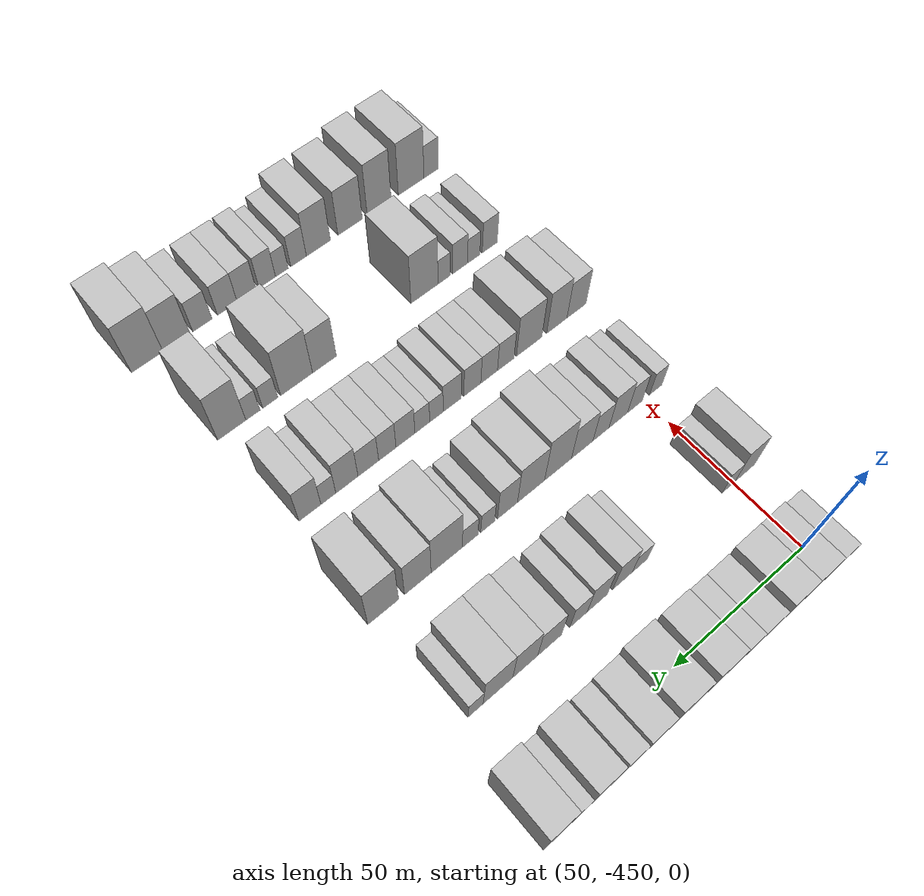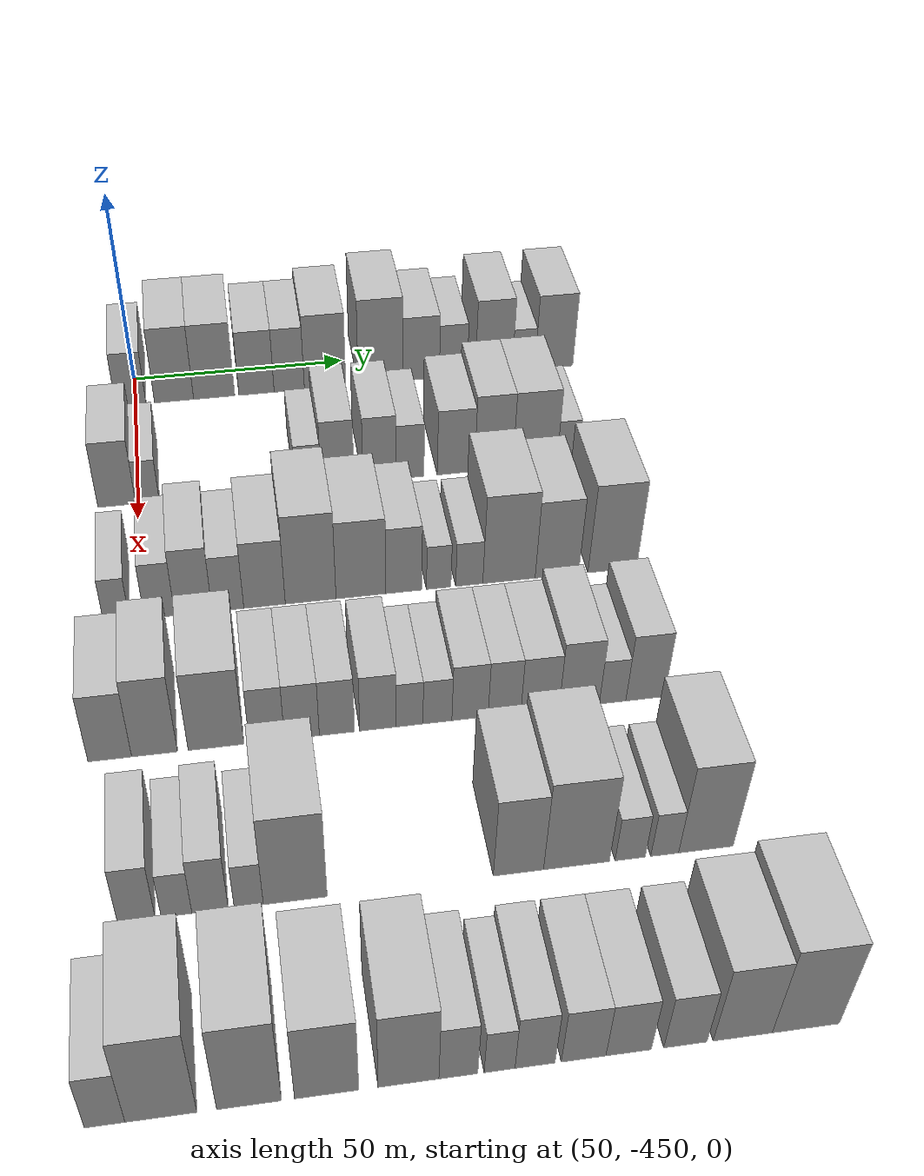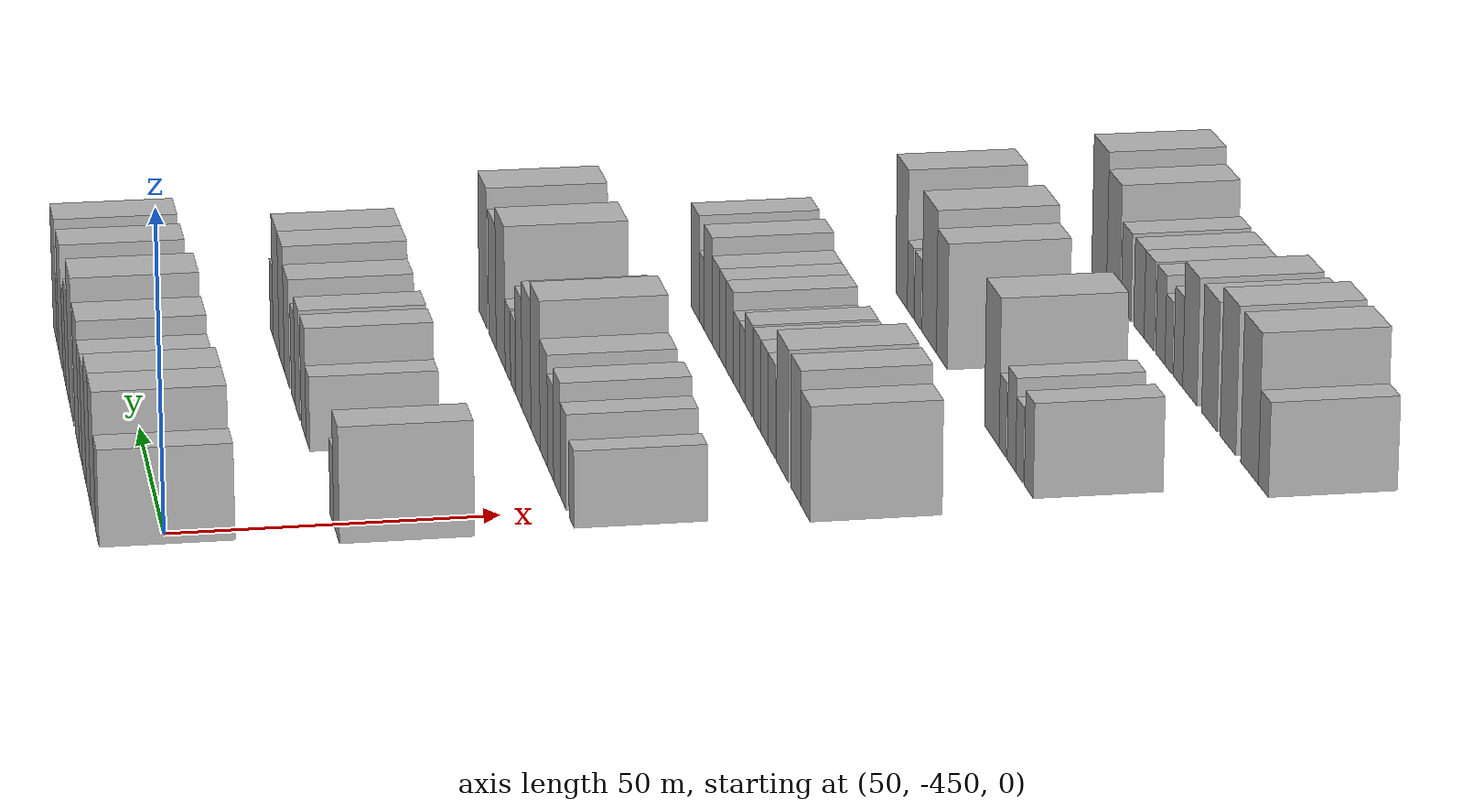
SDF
<sdf version="1.6">
 <world name="default">
  <model name="building_11">
   <static>1</static>
   <pose>50.0000 -451.0208 0 0.000000 0.000000 0.000000</pose>
   <link name="link">
    <pose>0 0 7.50 0 0 0</pose>
    <collision name="collision"><geometry><box><size>20.0000 7.1049 15.0000</size></box></geometry></collision>
    <visual name="visual">
     <cast_shadows>0</cast_shadows>
     <geometry><box><size>20.0000 7.1049 15.0000</size></box></geometry>
     <material>
      <script>
       <uri>model://HANNAS_wall/materials/scripts</uri>
       <uri>model://HANNAS_wall/materials/textures</uri>
       <name>vrc/HANNAS_wall</name>
      </script>
     </material>
    </visual>
   </link>
  </model>
  <model name="building_12">
   <static>1</static>
   <pose>50.0000 -440.8777 0 0.000000 0.000000 0.000000</pose>
   <link name="link">
    <pose>0 0 10.50 0 0 0</pose>
    <collision name="collision"><geometry><box><size>20.0000 9.1814 21.0000</size></box></geometry></collision>
    <visual name="visual">
     <cast_shadows>0</cast_shadows>
     <geometry><box><size>20.0000 9.1814 21.0000</size></box></geometry>
     <material>
      <script>
       <uri>model://HANNAS_wall/materials/scripts</uri>
       <uri>model://HANNAS_wall/materials/textures</uri>
       <name>vrc/HANNAS_wall</name>
      </script>
     </material>
    </visual>
   </link>
  </model>
  <model name="building_13">
   <static>1</static>
   <pose>50.0000 -431.4291 0 0.000000 0.000000 0.000000</pose>
   <link name="link">
    <pose>0 0 10.50 0 0 0</pose>
    <collision name="collision"><geometry><box><size>20.0000 9.7158 21.0000</size></box></geometry></collision>
    <visual name="visual">
     <cast_shadows>0</cast_shadows>
     <geometry><box><size>20.0000 9.7158 21.0000</size></box></geometry>
     <material>
      <script>
       <uri>model://HANNAS_wall/materials/scripts</uri>
       <uri>model://HANNAS_wall/materials/textures</uri>
       <name>vrc/HANNAS_wall</name>
      </script>
     </material>
    </visual>
   </link>
  </model>
  <model name="building_14">
   <static>1</static>
   <pose>50.0000 -421.3837 0 0.000000 0.000000 0.000000</pose>
   <link name="link">
    <pose>0 0 9.00 0 0 0</pose>
    <collision name="collision"><geometry><box><size>20.0000 8.3751 18.0000</size></box></geometry></collision>
    <visual name="visual">
     <cast_shadows>0</cast_shadows>
     <geometry><box><size>20.0000 8.3751 18.0000</size></box></geometry>
     <material>
      <script>
       <uri>model://HANNAS_wall/materials/scripts</uri>
       <uri>model://HANNAS_wall/materials/textures</uri>
       <name>vrc/HANNAS_wall</name>
      </script>
     </material>
    </visual>
   </link>
  </model>
  <model name="building_15">
   <static>1</static>
   <pose>50.0000 -413.5854 0 0.000000 0.000000 0.000000</pose>
   <link name="link">
    <pose>0 0 9.00 0 0 0</pose>
    <collision name="collision"><geometry><box><size>20.0000 7.2215 18.0000</size></box></geometry></collision>
    <visual name="visual">
     <cast_shadows>0</cast_shadows>
     <geometry><box><size>20.0000 7.2215 18.0000</size></box></geometry>
     <material>
      <script>
       <uri>model://HANNAS_wall/materials/scripts</uri>
       <uri>model://HANNAS_wall/materials/textures</uri>
       <name>vrc/HANNAS_wall</name>
      </script>
     </material>
    </visual>
   </link>
  </model>
  <model name="building_16">
   <static>1</static>
   <pose>50.0000 -405.0166 0 0.000000 0.000000 0.000000</pose>
   <link name="link">
    <pose>0 0 10.50 0 0 0</pose>
    <collision name="collision"><geometry><box><size>20.0000 9.9160 21.0000</size></box></geometry></collision>
    <visual name="visual">
     <cast_shadows>0</cast_shadows>
     <geometry><box><size>20.0000 9.9160 21.0000</size></box></geometry>
     <material>
      <script>
       <uri>model://HANNAS_wall/materials/scripts</uri>
       <uri>model://HANNAS_wall/materials/textures</uri>
       <name>vrc/HANNAS_wall</name>
      </script>
     </material>
    </visual>
   </link>
  </model>
  <model name="building_17">
   <static>1</static>
   <pose>50.0000 -391.6826 0 0.000000 0.000000 0.000000</pose>
   <link name="link">
    <pose>0 0 12.00 0 0 0</pose>
    <collision name="collision"><geometry><box><size>20.0000 10.7519 24.0000</size></box></geometry></collision>
    <visual name="visual">
     <cast_shadows>0</cast_shadows>
     <geometry><box><size>20.0000 10.7519 24.0000</size></box></geometry>
     <material>
      <script>
       <uri>model://HANNAS_wall/materials/scripts</uri>
       <uri>model://HANNAS_wall/materials/textures</uri>
       <name>vrc/HANNAS_wall</name>
      </script>
     </material>
    </visual>
   </link>
  </model>
  <model name="building_18">
   <static>1</static>
   <pose>50.0000 -381.8562 0 0.000000 0.000000 0.000000</pose>
   <link name="link">
    <pose>0 0 9.00 0 0 0</pose>
    <collision name="collision"><geometry><box><size>20.0000 8.9010 18.0000</size></box></geometry></collision>
    <visual name="visual">
     <cast_shadows>0</cast_shadows>
     <geometry><box><size>20.0000 8.9010 18.0000</size></box></geometry>
     <material>
      <script>
       <uri>model://HANNAS_wall/materials/scripts</uri>
       <uri>model://HANNAS_wall/materials/textures</uri>
       <name>vrc/HANNAS_wall</name>
      </script>
     </material>
    </visual>
   </link>
  </model>
  <model name="building_19">
   <static>1</static>
   <pose>50.0000 -374.0080 0 0.000000 0.000000 0.000000</pose>
   <link name="link">
    <pose>0 0 7.50 0 0 0</pose>
    <collision name="collision"><geometry><box><size>20.0000 6.7954 15.0000</size></box></geometry></collision>
    <visual name="visual">
     <cast_shadows>0</cast_shadows>
     <geometry><box><size>20.0000 6.7954 15.0000</size></box></geometry>
     <material>
      <script>
       <uri>model://HANNAS_wall/materials/scripts</uri>
       <uri>model://HANNAS_wall/materials/textures</uri>
       <name>vrc/HANNAS_wall</name>
      </script>
     </material>
    </visual>
   </link>
  </model>
  <model name="building_20">
   <static>1</static>
   <pose>50.0000 -364.0766 0 0.000000 0.000000 0.000000</pose>
   <link name="link">
    <pose>0 0 10.50 0 0 0</pose>
    <collision name="collision"><geometry><box><size>20.0000 9.0674 21.0000</size></box></geometry></collision>
    <visual name="visual">
     <cast_shadows>0</cast_shadows>
     <geometry><box><size>20.0000 9.0674 21.0000</size></box></geometry>
     <material>
      <script>
       <uri>model://HANNAS_wall/materials/scripts</uri>
       <uri>model://HANNAS_wall/materials/textures</uri>
       <name>vrc/HANNAS_wall</name>
      </script>
     </material>
    </visual>
   </link>
  </model>
  <model name="building_21">
   <static>1</static>
   <pose>50.0000 -356.7486 0 0.000000 0.000000 0.000000</pose>
   <link name="link">
    <pose>0 0 6.00 0 0 0</pose>
    <collision name="collision"><geometry><box><size>20.0000 5.5885 12.0000</size></box></geometry></collision>
    <visual name="visual">
     <cast_shadows>0</cast_shadows>
     <geometry><box><size>20.0000 5.5885 12.0000</size></box></geometry>
     <material>
      <script>
       <uri>model://HANNAS_wall/materials/scripts</uri>
       <uri>model://HANNAS_wall/materials/textures</uri>
       <name>vrc/HANNAS_wall</name>
      </script>
     </material>
    </visual>
   </link>
  </model>
  <model name="building_22">
   <static>1</static>
   <pose>50.0000 -349.2690 0 0.000000 0.000000 0.000000</pose>
   <link name="link">
    <pose>0 0 10.50 0 0 0</pose>
    <collision name="collision"><geometry><box><size>20.0000 9.3707 21.0000</size></box></geometry></collision>
    <visual name="visual">
     <cast_shadows>0</cast_shadows>
     <geometry><box><size>20.0000 9.3707 21.0000</size></box></geometry>
     <material>
      <script>
       <uri>model://HANNAS_wall/materials/scripts</uri>
       <uri>model://HANNAS_wall/materials/textures</uri>
       <name>vrc/HANNAS_wall</name>
      </script>
     </material>
    </visual>
   </link>
  </model>
  <model name="building_129">
   <static>1</static>
   <pose>85.0000 -454.5542 0 0.000000 0.000000 0.000000</pose>
   <link name="link">
    <pose>0 0 9.00 0 0 0</pose>
    <collision name="collision"><geometry><box><size>20.0000 8.1756 18.0000</size></box></geometry></collision>
    <visual name="visual">
     <cast_shadows>0</cast_shadows>
     <geometry><box><size>20.0000 8.1756 18.0000</size></box></geometry>
     <material>
      <script>
       <uri>model://HANNAS_wall/materials/scripts</uri>
       <uri>model://HANNAS_wall/materials/textures</uri>
       <name>vrc/HANNAS_wall</name>
      </script>
     </material>
    </visual>
   </link>
  </model>
  <model name="building_130">
   <static>1</static>
   <pose>85.0000 -447.8819 0 0.000000 0.000000 0.000000</pose>
   <link name="link">
    <pose>0 0 6.00 0 0 0</pose>
    <collision name="collision"><geometry><box><size>20.0000 5.1689 12.0000</size></box></geometry></collision>
    <visual name="visual">
     <cast_shadows>0</cast_shadows>
     <geometry><box><size>20.0000 5.1689 12.0000</size></box></geometry>
     <material>
      <script>
       <uri>model://HANNAS_wall/materials/scripts</uri>
       <uri>model://HANNAS_wall/materials/textures</uri>
       <name>vrc/HANNAS_wall</name>
      </script>
     </material>
    </visual>
   </link>
  </model>
  <model name="building_131">
   <static>1</static>
   <pose>85.0000 -412.5890 0 0.000000 0.000000 0.000000</pose>
   <link name="link">
    <pose>0 0 6.00 0 0 0</pose>
    <collision name="collision"><geometry><box><size>20.0000 5.8057 12.0000</size></box></geometry></collision>
    <visual name="visual">
     <cast_shadows>0</cast_shadows>
     <geometry><box><size>20.0000 5.8057 12.0000</size></box></geometry>
     <material>
      <script>
       <uri>model://HANNAS_wall/materials/scripts</uri>
       <uri>model://HANNAS_wall/materials/textures</uri>
       <name>vrc/HANNAS_wall</name>
      </script>
     </material>
    </visual>
   </link>
  </model>
  <model name="building_132">
   <static>1</static>
   <pose>85.0000 -406.0081 0 0.000000 0.000000 0.000000</pose>
   <link name="link">
    <pose>0 0 9.00 0 0 0</pose>
    <collision name="collision"><geometry><box><size>20.0000 7.3562 18.0000</size></box></geometry></collision>
    <visual name="visual">
     <cast_shadows>0</cast_shadows>
     <geometry><box><size>20.0000 7.3562 18.0000</size></box></geometry>
     <material>
      <script>
       <uri>model://HANNAS_wall/materials/scripts</uri>
       <uri>model://HANNAS_wall/materials/textures</uri>
       <name>vrc/HANNAS_wall</name>
      </script>
     </material>
    </visual>
   </link>
  </model>
  <model name="building_133">
   <static>1</static>
   <pose>85.0000 -396.6106 0 0.000000 0.000000 0.000000</pose>
   <link name="link">
    <pose>0 0 9.00 0 0 0</pose>
    <collision name="collision"><geometry><box><size>20.0000 7.4388 18.0000</size></box></geometry></collision>
    <visual name="visual">
     <cast_shadows>0</cast_shadows>
     <geometry><box><size>20.0000 7.4388 18.0000</size></box></geometry>
     <material>
      <script>
       <uri>model://HANNAS_wall/materials/scripts</uri>
       <uri>model://HANNAS_wall/materials/textures</uri>
       <name>vrc/HANNAS_wall</name>
      </script>
     </material>
    </visual>
   </link>
  </model>
  <model name="building_134">
   <static>1</static>
   <pose>85.0000 -389.7562 0 0.000000 0.000000 0.000000</pose>
   <link name="link">
    <pose>0 0 7.50 0 0 0</pose>
    <collision name="collision"><geometry><box><size>20.0000 6.2700 15.0000</size></box></geometry></collision>
    <visual name="visual">
     <cast_shadows>0</cast_shadows>
     <geometry><box><size>20.0000 6.2700 15.0000</size></box></geometry>
     <material>
      <script>
       <uri>model://HANNAS_wall/materials/scripts</uri>
       <uri>model://HANNAS_wall/materials/textures</uri>
       <name>vrc/HANNAS_wall</name>
      </script>
     </material>
    </visual>
   </link>
  </model>
  <model name="building_135">
   <static>1</static>
   <pose>85.0000 -379.3825 0 0.000000 0.000000 0.000000</pose>
   <link name="link">
    <pose>0 0 9.00 0 0 0</pose>
    <collision name="collision"><geometry><box><size>20.0000 8.4773 18.0000</size></box></geometry></collision>
    <visual name="visual">
     <cast_shadows>0</cast_shadows>
     <geometry><box><size>20.0000 8.4773 18.0000</size></box></geometry>
     <material>
      <script>
       <uri>model://HANNAS_wall/materials/scripts</uri>
       <uri>model://HANNAS_wall/materials/textures</uri>
       <name>vrc/HANNAS_wall</name>
      </script>
     </material>
    </visual>
   </link>
  </model>
  <model name="building_136">
   <static>1</static>
   <pose>85.0000 -370.7917 0 0.000000 0.000000 0.000000</pose>
   <link name="link">
    <pose>0 0 10.50 0 0 0</pose>
    <collision name="collision"><geometry><box><size>20.0000 8.7043 21.0000</size></box></geometry></collision>
    <visual name="visual">
     <cast_shadows>0</cast_shadows>
     <geometry><box><size>20.0000 8.7043 21.0000</size></box></geometry>
     <material>
      <script>
       <uri>model://HANNAS_wall/materials/scripts</uri>
       <uri>model://HANNAS_wall/materials/textures</uri>
       <name>vrc/HANNAS_wall</name>
      </script>
     </material>
    </visual>
   </link>
  </model>
  <model name="building_137">
   <static>1</static>
   <pose>85.0000 -361.3751 0 0.000000 0.000000 0.000000</pose>
   <link name="link">
    <pose>0 0 10.50 0 0 0</pose>
    <collision name="collision"><geometry><box><size>20.0000 10.1288 21.0000</size></box></geometry></collision>
    <visual name="visual">
     <cast_shadows>0</cast_shadows>
     <geometry><box><size>20.0000 10.1288 21.0000</size></box></geometry>
     <material>
      <script>
       <uri>model://HANNAS_wall/materials/scripts</uri>
       <uri>model://HANNAS_wall/materials/textures</uri>
       <name>vrc/HANNAS_wall</name>
      </script>
     </material>
    </visual>
   </link>
  </model>
  <model name="building_138">
   <static>1</static>
   <pose>85.0000 -353.8034 0 0.000000 0.000000 0.000000</pose>
   <link name="link">
    <pose>0 0 6.00 0 0 0</pose>
    <collision name="collision"><geometry><box><size>20.0000 5.0144 12.0000</size></box></geometry></collision>
    <visual name="visual">
     <cast_shadows>0</cast_shadows>
     <geometry><box><size>20.0000 5.0144 12.0000</size></box></geometry>
     <material>
      <script>
       <uri>model://HANNAS_wall/materials/scripts</uri>
       <uri>model://HANNAS_wall/materials/textures</uri>
       <name>vrc/HANNAS_wall</name>
      </script>
     </material>
    </visual>
   </link>
  </model>
  <model name="building_251">
   <static>1</static>
   <pose>120.0000 -454.8356 0 0.000000 0.000000 0.000000</pose>
   <link name="link">
    <pose>0 0 6.00 0 0 0</pose>
    <collision name="collision"><geometry><box><size>20.0000 5.1895 12.0000</size></box></geometry></collision>
    <visual name="visual">
     <cast_shadows>0</cast_shadows>
     <geometry><box><size>20.0000 5.1895 12.0000</size></box></geometry>
     <material>
      <script>
       <uri>model://HANNAS_wall/materials/scripts</uri>
       <uri>model://HANNAS_wall/materials/textures</uri>
       <name>vrc/HANNAS_wall</name>
      </script>
     </material>
    </visual>
   </link>
  </model>
  <model name="building_252">
   <static>1</static>
   <pose>120.0000 -446.1919 0 0.000000 0.000000 0.000000</pose>
   <link name="link">
    <pose>0 0 7.50 0 0 0</pose>
    <collision name="collision"><geometry><box><size>20.0000 6.0978 15.0000</size></box></geometry></collision>
    <visual name="visual">
     <cast_shadows>0</cast_shadows>
     <geometry><box><size>20.0000 6.0978 15.0000</size></box></geometry>
     <material>
      <script>
       <uri>model://HANNAS_wall/materials/scripts</uri>
       <uri>model://HANNAS_wall/materials/textures</uri>
       <name>vrc/HANNAS_wall</name>
      </script>
     </material>
    </visual>
   </link>
  </model>
  <model name="building_253">
   <static>1</static>
   <pose>120.0000 -439.3762 0 0.000000 0.000000 0.000000</pose>
   <link name="link">
    <pose>0 0 9.00 0 0 0</pose>
    <collision name="collision"><geometry><box><size>20.0000 7.5338 18.0000</size></box></geometry></collision>
    <visual name="visual">
     <cast_shadows>0</cast_shadows>
     <geometry><box><size>20.0000 7.5338 18.0000</size></box></geometry>
     <material>
      <script>
       <uri>model://HANNAS_wall/materials/scripts</uri>
       <uri>model://HANNAS_wall/materials/textures</uri>
       <name>vrc/HANNAS_wall</name>
      </script>
     </material>
    </visual>
   </link>
  </model>
  <model name="building_254">
   <static>1</static>
   <pose>120.0000 -432.3943 0 0.000000 0.000000 0.000000</pose>
   <link name="link">
    <pose>0 0 7.50 0 0 0</pose>
    <collision name="collision"><geometry><box><size>20.0000 6.4299 15.0000</size></box></geometry></collision>
    <visual name="visual">
     <cast_shadows>0</cast_shadows>
     <geometry><box><size>20.0000 6.4299 15.0000</size></box></geometry>
     <material>
      <script>
       <uri>model://HANNAS_wall/materials/scripts</uri>
       <uri>model://HANNAS_wall/materials/textures</uri>
       <name>vrc/HANNAS_wall</name>
      </script>
     </material>
    </visual>
   </link>
  </model>
  <model name="building_255">
   <static>1</static>
   <pose>120.0000 -424.9475 0 0.000000 0.000000 0.000000</pose>
   <link name="link">
    <pose>0 0 9.00 0 0 0</pose>
    <collision name="collision"><geometry><box><size>20.0000 8.4638 18.0000</size></box></geometry></collision>
    <visual name="visual">
     <cast_shadows>0</cast_shadows>
     <geometry><box><size>20.0000 8.4638 18.0000</size></box></geometry>
     <material>
      <script>
       <uri>model://HANNAS_wall/materials/scripts</uri>
       <uri>model://HANNAS_wall/materials/textures</uri>
       <name>vrc/HANNAS_wall</name>
      </script>
     </material>
    </visual>
   </link>
  </model>
  <model name="building_256">
   <static>1</static>
   <pose>120.0000 -415.5092 0 0.000000 0.000000 0.000000</pose>
   <link name="link">
    <pose>0 0 12.00 0 0 0</pose>
    <collision name="collision"><geometry><box><size>20.0000 10.4128 24.0000</size></box></geometry></collision>
    <visual name="visual">
     <cast_shadows>0</cast_shadows>
     <geometry><box><size>20.0000 10.4128 24.0000</size></box></geometry>
     <material>
      <script>
       <uri>model://HANNAS_wall/materials/scripts</uri>
       <uri>model://HANNAS_wall/materials/textures</uri>
       <name>vrc/HANNAS_wall</name>
      </script>
     </material>
    </visual>
   </link>
  </model>
  <model name="building_257">
   <static>1</static>
   <pose>120.0000 -405.1610 0 0.000000 0.000000 0.000000</pose>
   <link name="link">
    <pose>0 0 10.50 0 0 0</pose>
    <collision name="collision"><geometry><box><size>20.0000 10.2837 21.0000</size></box></geometry></collision>
    <visual name="visual">
     <cast_shadows>0</cast_shadows>
     <geometry><box><size>20.0000 10.2837 21.0000</size></box></geometry>
     <material>
      <script>
       <uri>model://HANNAS_wall/materials/scripts</uri>
       <uri>model://HANNAS_wall/materials/textures</uri>
       <name>vrc/HANNAS_wall</name>
      </script>
     </material>
    </visual>
   </link>
  </model>
  <model name="building_258">
   <static>1</static>
   <pose>120.0000 -396.2894 0 0.000000 0.000000 0.000000</pose>
   <link name="link">
    <pose>0 0 9.00 0 0 0</pose>
    <collision name="collision"><geometry><box><size>20.0000 7.4596 18.0000</size></box></geometry></collision>
    <visual name="visual">
     <cast_shadows>0</cast_shadows>
     <geometry><box><size>20.0000 7.4596 18.0000</size></box></geometry>
     <material>
      <script>
       <uri>model://HANNAS_wall/materials/scripts</uri>
       <uri>model://HANNAS_wall/materials/textures</uri>
       <name>vrc/HANNAS_wall</name>
      </script>
     </material>
    </visual>
   </link>
  </model>
  <model name="building_259">
   <static>1</static>
   <pose>120.0000 -389.0026 0 0.000000 0.000000 0.000000</pose>
   <link name="link">
    <pose>0 0 6.00 0 0 0</pose>
    <collision name="collision"><geometry><box><size>20.0000 5.1139 12.0000</size></box></geometry></collision>
    <visual name="visual">
     <cast_shadows>0</cast_shadows>
     <geometry><box><size>20.0000 5.1139 12.0000</size></box></geometry>
     <material>
      <script>
       <uri>model://HANNAS_wall/materials/scripts</uri>
       <uri>model://HANNAS_wall/materials/textures</uri>
       <name>vrc/HANNAS_wall</name>
      </script>
     </material>
    </visual>
   </link>
  </model>
  <model name="building_260">
   <static>1</static>
   <pose>120.0000 -382.6071 0 0.000000 0.000000 0.000000</pose>
   <link name="link">
    <pose>0 0 6.00 0 0 0</pose>
    <collision name="collision"><geometry><box><size>20.0000 5.6772 12.0000</size></box></geometry></collision>
    <visual name="visual">
     <cast_shadows>0</cast_shadows>
     <geometry><box><size>20.0000 5.6772 12.0000</size></box></geometry>
     <material>
      <script>
       <uri>model://HANNAS_wall/materials/scripts</uri>
       <uri>model://HANNAS_wall/materials/textures</uri>
       <name>vrc/HANNAS_wall</name>
      </script>
     </material>
    </visual>
   </link>
  </model>
  <model name="building_261">
   <static>1</static>
   <pose>120.0000 -374.2355 0 0.000000 0.000000 0.000000</pose>
   <link name="link">
    <pose>0 0 12.00 0 0 0</pose>
    <collision name="collision"><geometry><box><size>20.0000 11.0661 24.0000</size></box></geometry></collision>
    <visual name="visual">
     <cast_shadows>0</cast_shadows>
     <geometry><box><size>20.0000 11.0661 24.0000</size></box></geometry>
     <material>
      <script>
       <uri>model://HANNAS_wall/materials/scripts</uri>
       <uri>model://HANNAS_wall/materials/textures</uri>
       <name>vrc/HANNAS_wall</name>
      </script>
     </material>
    </visual>
   </link>
  </model>
  <model name="building_262">
   <static>1</static>
   <pose>120.0000 -364.0863 0 0.000000 0.000000 0.000000</pose>
   <link name="link">
    <pose>0 0 10.50 0 0 0</pose>
    <collision name="collision"><geometry><box><size>20.0000 9.2322 21.0000</size></box></geometry></collision>
    <visual name="visual">
     <cast_shadows>0</cast_shadows>
     <geometry><box><size>20.0000 9.2322 21.0000</size></box></geometry>
     <material>
      <script>
       <uri>model://HANNAS_wall/materials/scripts</uri>
       <uri>model://HANNAS_wall/materials/textures</uri>
       <name>vrc/HANNAS_wall</name>
      </script>
     </material>
    </visual>
   </link>
  </model>
  <model name="building_263">
   <static>1</static>
   <pose>120.0000 -352.2567 0 0.000000 0.000000 0.000000</pose>
   <link name="link">
    <pose>0 0 12.00 0 0 0</pose>
    <collision name="collision"><geometry><box><size>20.0000 10.4270 24.0000</size></box></geometry></collision>
    <visual name="visual">
     <cast_shadows>0</cast_shadows>
     <geometry><box><size>20.0000 10.4270 24.0000</size></box></geometry>
     <material>
      <script>
       <uri>model://HANNAS_wall/materials/scripts</uri>
       <uri>model://HANNAS_wall/materials/textures</uri>
       <name>vrc/HANNAS_wall</name>
      </script>
     </material>
    </visual>
   </link>
  </model>
  <model name="building_372">
   <static>1</static>
   <pose>155.0000 -456.3380 0 0.000000 0.000000 0.000000</pose>
   <link name="link">
    <pose>0 0 9.00 0 0 0</pose>
    <collision name="collision"><geometry><box><size>20.0000 8.0043 18.0000</size></box></geometry></collision>
    <visual name="visual">
     <cast_shadows>0</cast_shadows>
     <geometry><box><size>20.0000 8.0043 18.0000</size></box></geometry>
     <material>
      <script>
       <uri>model://HANNAS_wall/materials/scripts</uri>
       <uri>model://HANNAS_wall/materials/textures</uri>
       <name>vrc/HANNAS_wall</name>
      </script>
     </material>
    </visual>
   </link>
  </model>
  <model name="building_373">
   <static>1</static>
   <pose>155.0000 -448.1203 0 0.000000 0.000000 0.000000</pose>
   <link name="link">
    <pose>0 0 10.50 0 0 0</pose>
    <collision name="collision"><geometry><box><size>20.0000 8.4311 21.0000</size></box></geometry></collision>
    <visual name="visual">
     <cast_shadows>0</cast_shadows>
     <geometry><box><size>20.0000 8.4311 21.0000</size></box></geometry>
     <material>
      <script>
       <uri>model://HANNAS_wall/materials/scripts</uri>
       <uri>model://HANNAS_wall/materials/textures</uri>
       <name>vrc/HANNAS_wall</name>
      </script>
     </material>
    </visual>
   </link>
  </model>
  <model name="building_374">
   <static>1</static>
   <pose>155.0000 -436.7246 0 0.000000 0.000000 0.000000</pose>
   <link name="link">
    <pose>0 0 10.50 0 0 0</pose>
    <collision name="collision"><geometry><box><size>20.0000 10.3604 21.0000</size></box></geometry></collision>
    <visual name="visual">
     <cast_shadows>0</cast_shadows>
     <geometry><box><size>20.0000 10.3604 21.0000</size></box></geometry>
     <material>
      <script>
       <uri>model://HANNAS_wall/materials/scripts</uri>
       <uri>model://HANNAS_wall/materials/textures</uri>
       <name>vrc/HANNAS_wall</name>
      </script>
     </material>
    </visual>
   </link>
  </model>
  <model name="building_375">
   <static>1</static>
   <pose>155.0000 -427.2517 0 0.000000 0.000000 0.000000</pose>
   <link name="link">
    <pose>0 0 7.50 0 0 0</pose>
    <collision name="collision"><geometry><box><size>20.0000 6.5854 15.0000</size></box></geometry></collision>
    <visual name="visual">
     <cast_shadows>0</cast_shadows>
     <geometry><box><size>20.0000 6.5854 15.0000</size></box></geometry>
     <material>
      <script>
       <uri>model://HANNAS_wall/materials/scripts</uri>
       <uri>model://HANNAS_wall/materials/textures</uri>
       <name>vrc/HANNAS_wall</name>
      </script>
     </material>
    </visual>
   </link>
  </model>
  <model name="building_376">
   <static>1</static>
   <pose>155.0000 -420.6816 0 0.000000 0.000000 0.000000</pose>
   <link name="link">
    <pose>0 0 7.50 0 0 0</pose>
    <collision name="collision"><geometry><box><size>20.0000 6.5547 15.0000</size></box></geometry></collision>
    <visual name="visual">
     <cast_shadows>0</cast_shadows>
     <geometry><box><size>20.0000 6.5547 15.0000</size></box></geometry>
     <material>
      <script>
       <uri>model://HANNAS_wall/materials/scripts</uri>
       <uri>model://HANNAS_wall/materials/textures</uri>
       <name>vrc/HANNAS_wall</name>
      </script>
     </material>
    </visual>
   </link>
  </model>
  <model name="building_377">
   <static>1</static>
   <pose>155.0000 -414.0834 0 0.000000 0.000000 0.000000</pose>
   <link name="link">
    <pose>0 0 7.50 0 0 0</pose>
    <collision name="collision"><geometry><box><size>20.0000 6.6418 15.0000</size></box></geometry></collision>
    <visual name="visual">
     <cast_shadows>0</cast_shadows>
     <geometry><box><size>20.0000 6.6418 15.0000</size></box></geometry>
     <material>
      <script>
       <uri>model://HANNAS_wall/materials/scripts</uri>
       <uri>model://HANNAS_wall/materials/textures</uri>
       <name>vrc/HANNAS_wall</name>
      </script>
     </material>
    </visual>
   </link>
  </model>
  <model name="building_378">
   <static>1</static>
   <pose>155.0000 -406.3012 0 0.000000 0.000000 0.000000</pose>
   <link name="link">
    <pose>0 0 7.50 0 0 0</pose>
    <collision name="collision"><geometry><box><size>20.0000 6.9226 15.0000</size></box></geometry></collision>
    <visual name="visual">
     <cast_shadows>0</cast_shadows>
     <geometry><box><size>20.0000 6.9226 15.0000</size></box></geometry>
     <material>
      <script>
       <uri>model://HANNAS_wall/materials/scripts</uri>
       <uri>model://HANNAS_wall/materials/textures</uri>
       <name>vrc/HANNAS_wall</name>
      </script>
     </material>
    </visual>
   </link>
  </model>
  <model name="building_379">
   <static>1</static>
   <pose>155.0000 -400.2929 0 0.000000 0.000000 0.000000</pose>
   <link name="link">
    <pose>0 0 6.00 0 0 0</pose>
    <collision name="collision"><geometry><box><size>20.0000 5.0939 12.0000</size></box></geometry></collision>
    <visual name="visual">
     <cast_shadows>0</cast_shadows>
     <geometry><box><size>20.0000 5.0939 12.0000</size></box></geometry>
     <material>
      <script>
       <uri>model://HANNAS_wall/materials/scripts</uri>
       <uri>model://HANNAS_wall/materials/textures</uri>
       <name>vrc/HANNAS_wall</name>
      </script>
     </material>
    </visual>
   </link>
  </model>
  <model name="building_380">
   <static>1</static>
   <pose>155.0000 -394.9723 0 0.000000 0.000000 0.000000</pose>
   <link name="link">
    <pose>0 0 6.00 0 0 0</pose>
    <collision name="collision"><geometry><box><size>20.0000 5.5474 12.0000</size></box></geometry></collision>
    <visual name="visual">
     <cast_shadows>0</cast_shadows>
     <geometry><box><size>20.0000 5.5474 12.0000</size></box></geometry>
     <material>
      <script>
       <uri>model://HANNAS_wall/materials/scripts</uri>
       <uri>model://HANNAS_wall/materials/textures</uri>
       <name>vrc/HANNAS_wall</name>
      </script>
     </material>
    </visual>
   </link>
  </model>
  <model name="building_381">
   <static>1</static>
   <pose>155.0000 -388.7179 0 0.000000 0.000000 0.000000</pose>
   <link name="link">
    <pose>0 0 7.50 0 0 0</pose>
    <collision name="collision"><geometry><box><size>20.0000 6.9613 15.0000</size></box></geometry></collision>
    <visual name="visual">
     <cast_shadows>0</cast_shadows>
     <geometry><box><size>20.0000 6.9613 15.0000</size></box></geometry>
     <material>
      <script>
       <uri>model://HANNAS_wall/materials/scripts</uri>
       <uri>model://HANNAS_wall/materials/textures</uri>
       <name>vrc/HANNAS_wall</name>
      </script>
     </material>
    </visual>
   </link>
  </model>
  <model name="building_382">
   <static>1</static>
   <pose>155.0000 -382.0667 0 0.000000 0.000000 0.000000</pose>
   <link name="link">
    <pose>0 0 7.50 0 0 0</pose>
    <collision name="collision"><geometry><box><size>20.0000 6.3412 15.0000</size></box></geometry></collision>
    <visual name="visual">
     <cast_shadows>0</cast_shadows>
     <geometry><box><size>20.0000 6.3412 15.0000</size></box></geometry>
     <material>
      <script>
       <uri>model://HANNAS_wall/materials/scripts</uri>
       <uri>model://HANNAS_wall/materials/textures</uri>
       <name>vrc/HANNAS_wall</name>
      </script>
     </material>
    </visual>
   </link>
  </model>
  <model name="building_383">
   <static>1</static>
   <pose>155.0000 -375.1766 0 0.000000 0.000000 0.000000</pose>
   <link name="link">
    <pose>0 0 7.50 0 0 0</pose>
    <collision name="collision"><geometry><box><size>20.0000 7.4389 15.0000</size></box></geometry></collision>
    <visual name="visual">
     <cast_shadows>0</cast_shadows>
     <geometry><box><size>20.0000 7.4389 15.0000</size></box></geometry>
     <material>
      <script>
       <uri>model://HANNAS_wall/materials/scripts</uri>
       <uri>model://HANNAS_wall/materials/textures</uri>
       <name>vrc/HANNAS_wall</name>
      </script>
     </material>
    </visual>
   </link>
  </model>
  <model name="building_384">
   <static>1</static>
   <pose>155.0000 -367.5301 0 0.000000 0.000000 0.000000</pose>
   <link name="link">
    <pose>0 0 9.00 0 0 0</pose>
    <collision name="collision"><geometry><box><size>20.0000 7.8541 18.0000</size></box></geometry></collision>
    <visual name="visual">
     <cast_shadows>0</cast_shadows>
     <geometry><box><size>20.0000 7.8541 18.0000</size></box></geometry>
     <material>
      <script>
       <uri>model://HANNAS_wall/materials/scripts</uri>
       <uri>model://HANNAS_wall/materials/textures</uri>
       <name>vrc/HANNAS_wall</name>
      </script>
     </material>
    </visual>
   </link>
  </model>
  <model name="building_385">
   <static>1</static>
   <pose>155.0000 -360.9988 0 0.000000 0.000000 0.000000</pose>
   <link name="link">
    <pose>0 0 6.00 0 0 0</pose>
    <collision name="collision"><geometry><box><size>20.0000 5.2086 12.0000</size></box></geometry></collision>
    <visual name="visual">
     <cast_shadows>0</cast_shadows>
     <geometry><box><size>20.0000 5.2086 12.0000</size></box></geometry>
     <material>
      <script>
       <uri>model://HANNAS_wall/materials/scripts</uri>
       <uri>model://HANNAS_wall/materials/textures</uri>
       <name>vrc/HANNAS_wall</name>
      </script>
     </material>
    </visual>
   </link>
  </model>
  <model name="building_386">
   <static>1</static>
   <pose>155.0000 -354.5808 0 0.000000 0.000000 0.000000</pose>
   <link name="link">
    <pose>0 0 9.00 0 0 0</pose>
    <collision name="collision"><geometry><box><size>20.0000 7.6274 18.0000</size></box></geometry></collision>
    <visual name="visual">
     <cast_shadows>0</cast_shadows>
     <geometry><box><size>20.0000 7.6274 18.0000</size></box></geometry>
     <material>
      <script>
       <uri>model://HANNAS_wall/materials/scripts</uri>
       <uri>model://HANNAS_wall/materials/textures</uri>
       <name>vrc/HANNAS_wall</name>
      </script>
     </material>
    </visual>
   </link>
  </model>
  <model name="building_497">
   <static>1</static>
   <pose>190.0000 -452.0537 0 0.000000 0.000000 0.000000</pose>
   <link name="link">
    <pose>0 0 7.50 0 0 0</pose>
    <collision name="collision"><geometry><box><size>20.0000 6.3151 15.0000</size></box></geometry></collision>
    <visual name="visual">
     <cast_shadows>0</cast_shadows>
     <geometry><box><size>20.0000 6.3151 15.0000</size></box></geometry>
     <material>
      <script>
       <uri>model://HANNAS_wall/materials/scripts</uri>
       <uri>model://HANNAS_wall/materials/textures</uri>
       <name>vrc/HANNAS_wall</name>
      </script>
     </material>
    </visual>
   </link>
  </model>
  <model name="building_498">
   <static>1</static>
   <pose>190.0000 -445.3091 0 0.000000 0.000000 0.000000</pose>
   <link name="link">
    <pose>0 0 6.00 0 0 0</pose>
    <collision name="collision"><geometry><box><size>20.0000 5.1743 12.0000</size></box></geometry></collision>
    <visual name="visual">
     <cast_shadows>0</cast_shadows>
     <geometry><box><size>20.0000 5.1743 12.0000</size></box></geometry>
     <material>
      <script>
       <uri>model://HANNAS_wall/materials/scripts</uri>
       <uri>model://HANNAS_wall/materials/textures</uri>
       <name>vrc/HANNAS_wall</name>
      </script>
     </material>
    </visual>
   </link>
  </model>
  <model name="building_499">
   <static>1</static>
   <pose>190.0000 -439.6464 0 0.000000 0.000000 0.000000</pose>
   <link name="link">
    <pose>0 0 7.50 0 0 0</pose>
    <collision name="collision"><geometry><box><size>20.0000 6.1510 15.0000</size></box></geometry></collision>
    <visual name="visual">
     <cast_shadows>0</cast_shadows>
     <geometry><box><size>20.0000 6.1510 15.0000</size></box></geometry>
     <material>
      <script>
       <uri>model://HANNAS_wall/materials/scripts</uri>
       <uri>model://HANNAS_wall/materials/textures</uri>
       <name>vrc/HANNAS_wall</name>
      </script>
     </material>
    </visual>
   </link>
  </model>
  <model name="building_500">
   <static>1</static>
   <pose>190.0000 -433.1033 0 0.000000 0.000000 0.000000</pose>
   <link name="link">
    <pose>0 0 6.00 0 0 0</pose>
    <collision name="collision"><geometry><box><size>20.0000 4.9353 12.0000</size></box></geometry></collision>
    <visual name="visual">
     <cast_shadows>0</cast_shadows>
     <geometry><box><size>20.0000 4.9353 12.0000</size></box></geometry>
     <material>
      <script>
       <uri>model://HANNAS_wall/materials/scripts</uri>
       <uri>model://HANNAS_wall/materials/textures</uri>
       <name>vrc/HANNAS_wall</name>
      </script>
     </material>
    </visual>
   </link>
  </model>
  <model name="building_501">
   <static>1</static>
   <pose>190.0000 -425.1860 0 0.000000 0.000000 0.000000</pose>
   <link name="link">
    <pose>0 0 12.00 0 0 0</pose>
    <collision name="collision"><geometry><box><size>20.0000 10.8992 24.0000</size></box></geometry></collision>
    <visual name="visual">
     <cast_shadows>0</cast_shadows>
     <geometry><box><size>20.0000 10.8992 24.0000</size></box></geometry>
     <material>
      <script>
       <uri>model://HANNAS_wall/materials/scripts</uri>
       <uri>model://HANNAS_wall/materials/textures</uri>
       <name>vrc/HANNAS_wall</name>
      </script>
     </material>
    </visual>
   </link>
  </model>
  <model name="building_502">
   <static>1</static>
   <pose>190.0000 -386.4638 0 0.000000 0.000000 0.000000</pose>
   <link name="link">
    <pose>0 0 10.50 0 0 0</pose>
    <collision name="collision"><geometry><box><size>20.0000 8.8484 21.0000</size></box></geometry></collision>
    <visual name="visual">
     <cast_shadows>0</cast_shadows>
     <geometry><box><size>20.0000 8.8484 21.0000</size></box></geometry>
     <material>
      <script>
       <uri>model://HANNAS_wall/materials/scripts</uri>
       <uri>model://HANNAS_wall/materials/textures</uri>
       <name>vrc/HANNAS_wall</name>
      </script>
     </material>
    </visual>
   </link>
  </model>
  <model name="building_503">
   <static>1</static>
   <pose>190.0000 -376.1815 0 0.000000 0.000000 0.000000</pose>
   <link name="link">
    <pose>0 0 12.00 0 0 0</pose>
    <collision name="collision"><geometry><box><size>20.0000 11.7163 24.0000</size></box></geometry></collision>
    <visual name="visual">
     <cast_shadows>0</cast_shadows>
     <geometry><box><size>20.0000 11.7163 24.0000</size></box></geometry>
     <material>
      <script>
       <uri>model://HANNAS_wall/materials/scripts</uri>
       <uri>model://HANNAS_wall/materials/textures</uri>
       <name>vrc/HANNAS_wall</name>
      </script>
     </material>
    </visual>
   </link>
  </model>
  <model name="building_504">
   <static>1</static>
   <pose>190.0000 -366.6189 0 0.000000 0.000000 0.000000</pose>
   <link name="link">
    <pose>0 0 6.00 0 0 0</pose>
    <collision name="collision"><geometry><box><size>20.0000 5.4088 12.0000</size></box></geometry></collision>
    <visual name="visual">
     <cast_shadows>0</cast_shadows>
     <geometry><box><size>20.0000 5.4088 12.0000</size></box></geometry>
     <material>
      <script>
       <uri>model://HANNAS_wall/materials/scripts</uri>
       <uri>model://HANNAS_wall/materials/textures</uri>
       <name>vrc/HANNAS_wall</name>
      </script>
     </material>
    </visual>
   </link>
  </model>
  <model name="building_505">
   <static>1</static>
   <pose>190.0000 -360.4108 0 0.000000 0.000000 0.000000</pose>
   <link name="link">
    <pose>0 0 6.00 0 0 0</pose>
    <collision name="collision"><geometry><box><size>20.0000 5.0073 12.0000</size></box></geometry></collision>
    <visual name="visual">
     <cast_shadows>0</cast_shadows>
     <geometry><box><size>20.0000 5.0073 12.0000</size></box></geometry>
     <material>
      <script>
       <uri>model://HANNAS_wall/materials/scripts</uri>
       <uri>model://HANNAS_wall/materials/textures</uri>
       <name>vrc/HANNAS_wall</name>
      </script>
     </material>
    </visual>
   </link>
  </model>
  <model name="building_506">
   <static>1</static>
   <pose>190.0000 -352.9693 0 0.000000 0.000000 0.000000</pose>
   <link name="link">
    <pose>0 0 12.00 0 0 0</pose>
    <collision name="collision"><geometry><box><size>20.0000 9.8757 24.0000</size></box></geometry></collision>
    <visual name="visual">
     <cast_shadows>0</cast_shadows>
     <geometry><box><size>20.0000 9.8757 24.0000</size></box></geometry>
     <material>
      <script>
       <uri>model://HANNAS_wall/materials/scripts</uri>
       <uri>model://HANNAS_wall/materials/textures</uri>
       <name>vrc/HANNAS_wall</name>
      </script>
     </material>
    </visual>
   </link>
  </model>
  <model name="building_626">
   <static>1</static>
   <pose>225.0000 -457.3929 0 0.000000 0.000000 0.000000</pose>
   <link name="link">
    <pose>0 0 7.50 0 0 0</pose>
    <collision name="collision"><geometry><box><size>20.0000 6.1034 15.0000</size></box></geometry></collision>
    <visual name="visual">
     <cast_shadows>0</cast_shadows>
     <geometry><box><size>20.0000 6.1034 15.0000</size></box></geometry>
     <material>
      <script>
       <uri>model://HANNAS_wall/materials/scripts</uri>
       <uri>model://HANNAS_wall/materials/textures</uri>
       <name>vrc/HANNAS_wall</name>
      </script>
     </material>
    </visual>
   </link>
  </model>
  <model name="building_627">
   <static>1</static>
   <pose>225.0000 -448.9122 0 0.000000 0.000000 0.000000</pose>
   <link name="link">
    <pose>0 0 12.00 0 0 0</pose>
    <collision name="collision"><geometry><box><size>20.0000 10.8579 24.0000</size></box></geometry></collision>
    <visual name="visual">
     <cast_shadows>0</cast_shadows>
     <geometry><box><size>20.0000 10.8579 24.0000</size></box></geometry>
     <material>
      <script>
       <uri>model://HANNAS_wall/materials/scripts</uri>
       <uri>model://HANNAS_wall/materials/textures</uri>
       <name>vrc/HANNAS_wall</name>
      </script>
     </material>
    </visual>
   </link>
  </model>
  <model name="building_628">
   <static>1</static>
   <pose>225.0000 -435.5242 0 0.000000 0.000000 0.000000</pose>
   <link name="link">
    <pose>0 0 12.00 0 0 0</pose>
    <collision name="collision"><geometry><box><size>20.0000 9.9180 24.0000</size></box></geometry></collision>
    <visual name="visual">
     <cast_shadows>0</cast_shadows>
     <geometry><box><size>20.0000 9.9180 24.0000</size></box></geometry>
     <material>
      <script>
       <uri>model://HANNAS_wall/materials/scripts</uri>
       <uri>model://HANNAS_wall/materials/textures</uri>
       <name>vrc/HANNAS_wall</name>
      </script>
     </material>
    </visual>
   </link>
  </model>
  <model name="building_629">
   <static>1</static>
   <pose>225.0000 -423.6040 0 0.000000 0.000000 0.000000</pose>
   <link name="link">
    <pose>0 0 10.50 0 0 0</pose>
    <collision name="collision"><geometry><box><size>20.0000 9.9223 21.0000</size></box></geometry></collision>
    <visual name="visual">
     <cast_shadows>0</cast_shadows>
     <geometry><box><size>20.0000 9.9223 21.0000</size></box></geometry>
     <material>
      <script>
       <uri>model://HANNAS_wall/materials/scripts</uri>
       <uri>model://HANNAS_wall/materials/textures</uri>
       <name>vrc/HANNAS_wall</name>
      </script>
     </material>
    </visual>
   </link>
  </model>
  <model name="building_630">
   <static>1</static>
   <pose>225.0000 -410.8910 0 0.000000 0.000000 0.000000</pose>
   <link name="link">
    <pose>0 0 10.50 0 0 0</pose>
    <collision name="collision"><geometry><box><size>20.0000 9.5038 21.0000</size></box></geometry></collision>
    <visual name="visual">
     <cast_shadows>0</cast_shadows>
     <geometry><box><size>20.0000 9.5038 21.0000</size></box></geometry>
     <material>
      <script>
       <uri>model://HANNAS_wall/materials/scripts</uri>
       <uri>model://HANNAS_wall/materials/textures</uri>
       <name>vrc/HANNAS_wall</name>
      </script>
     </material>
    </visual>
   </link>
  </model>
  <model name="building_631">
   <static>1</static>
   <pose>225.0000 -403.0821 0 0.000000 0.000000 0.000000</pose>
   <link name="link">
    <pose>0 0 7.50 0 0 0</pose>
    <collision name="collision"><geometry><box><size>20.0000 6.1140 15.0000</size></box></geometry></collision>
    <visual name="visual">
     <cast_shadows>0</cast_shadows>
     <geometry><box><size>20.0000 6.1140 15.0000</size></box></geometry>
     <material>
      <script>
       <uri>model://HANNAS_wall/materials/scripts</uri>
       <uri>model://HANNAS_wall/materials/textures</uri>
       <name>vrc/HANNAS_wall</name>
      </script>
     </material>
    </visual>
   </link>
  </model>
  <model name="building_632">
   <static>1</static>
   <pose>225.0000 -396.5827 0 0.000000 0.000000 0.000000</pose>
   <link name="link">
    <pose>0 0 6.00 0 0 0</pose>
    <collision name="collision"><geometry><box><size>20.0000 4.8847 12.0000</size></box></geometry></collision>
    <visual name="visual">
     <cast_shadows>0</cast_shadows>
     <geometry><box><size>20.0000 4.8847 12.0000</size></box></geometry>
     <material>
      <script>
       <uri>model://HANNAS_wall/materials/scripts</uri>
       <uri>model://HANNAS_wall/materials/textures</uri>
       <name>vrc/HANNAS_wall</name>
      </script>
     </material>
    </visual>
   </link>
  </model>
  <model name="building_633">
   <static>1</static>
   <pose>225.0000 -390.9529 0 0.000000 0.000000 0.000000</pose>
   <link name="link">
    <pose>0 0 7.50 0 0 0</pose>
    <collision name="collision"><geometry><box><size>20.0000 6.3751 15.0000</size></box></geometry></collision>
    <visual name="visual">
     <cast_shadows>0</cast_shadows>
     <geometry><box><size>20.0000 6.3751 15.0000</size></box></geometry>
     <material>
      <script>
       <uri>model://HANNAS_wall/materials/scripts</uri>
       <uri>model://HANNAS_wall/materials/textures</uri>
       <name>vrc/HANNAS_wall</name>
      </script>
     </material>
    </visual>
   </link>
  </model>
  <model name="building_634">
   <static>1</static>
   <pose>225.0000 -383.1913 0 0.000000 0.000000 0.000000</pose>
   <link name="link">
    <pose>0 0 7.50 0 0 0</pose>
    <collision name="collision"><geometry><box><size>20.0000 7.1480 15.0000</size></box></geometry></collision>
    <visual name="visual">
     <cast_shadows>0</cast_shadows>
     <geometry><box><size>20.0000 7.1480 15.0000</size></box></geometry>
     <material>
      <script>
       <uri>model://HANNAS_wall/materials/scripts</uri>
       <uri>model://HANNAS_wall/materials/textures</uri>
       <name>vrc/HANNAS_wall</name>
      </script>
     </material>
    </visual>
   </link>
  </model>
  <model name="building_635">
   <static>1</static>
   <pose>225.0000 -375.9489 0 0.000000 0.000000 0.000000</pose>
   <link name="link">
    <pose>0 0 7.50 0 0 0</pose>
    <collision name="collision"><geometry><box><size>20.0000 7.3370 15.0000</size></box></geometry></collision>
    <visual name="visual">
     <cast_shadows>0</cast_shadows>
     <geometry><box><size>20.0000 7.3370 15.0000</size></box></geometry>
     <material>
      <script>
       <uri>model://HANNAS_wall/materials/scripts</uri>
       <uri>model://HANNAS_wall/materials/textures</uri>
       <name>vrc/HANNAS_wall</name>
      </script>
     </material>
    </visual>
   </link>
  </model>
  <model name="building_636">
   <static>1</static>
   <pose>225.0000 -366.7650 0 0.000000 0.000000 0.000000</pose>
   <link name="link">
    <pose>0 0 7.50 0 0 0</pose>
    <collision name="collision"><geometry><box><size>20.0000 7.0307 15.0000</size></box></geometry></collision>
    <visual name="visual">
     <cast_shadows>0</cast_shadows>
     <geometry><box><size>20.0000 7.0307 15.0000</size></box></geometry>
     <material>
      <script>
       <uri>model://HANNAS_wall/materials/scripts</uri>
       <uri>model://HANNAS_wall/materials/textures</uri>
       <name>vrc/HANNAS_wall</name>
      </script>
     </material>
    </visual>
   </link>
  </model>
  <model name="building_637">
   <static>1</static>
   <pose>225.0000 -357.4000 0 0.000000 0.000000 0.000000</pose>
   <link name="link">
    <pose>0 0 10.50 0 0 0</pose>
    <collision name="collision"><geometry><box><size>20.0000 9.6993 21.0000</size></box></geometry></collision>
    <visual name="visual">
     <cast_shadows>0</cast_shadows>
     <geometry><box><size>20.0000 9.6993 21.0000</size></box></geometry>
     <material>
      <script>
       <uri>model://HANNAS_wall/materials/scripts</uri>
       <uri>model://HANNAS_wall/materials/textures</uri>
       <name>vrc/HANNAS_wall</name>
      </script>
     </material>
    </visual>
   </link>
  </model>
  <model name="building_638">
   <static>1</static>
   <pose>225.0000 -347.0003 0 0.000000 0.000000 0.000000</pose>
   <link name="link">
    <pose>0 0 12.00 0 0 0</pose>
    <collision name="collision"><geometry><box><size>20.0000 11.1003 24.0000</size></box></geometry></collision>
    <visual name="visual">
     <cast_shadows>0</cast_shadows>
     <geometry><box><size>20.0000 11.1003 24.0000</size></box></geometry>
     <material>
      <script>
       <uri>model://HANNAS_wall/materials/scripts</uri>
       <uri>model://HANNAS_wall/materials/textures</uri>
       <name>vrc/HANNAS_wall</name>
      </script>
     </material>
    </visual>
   </link>
  </model>
 </world>
</sdf>
